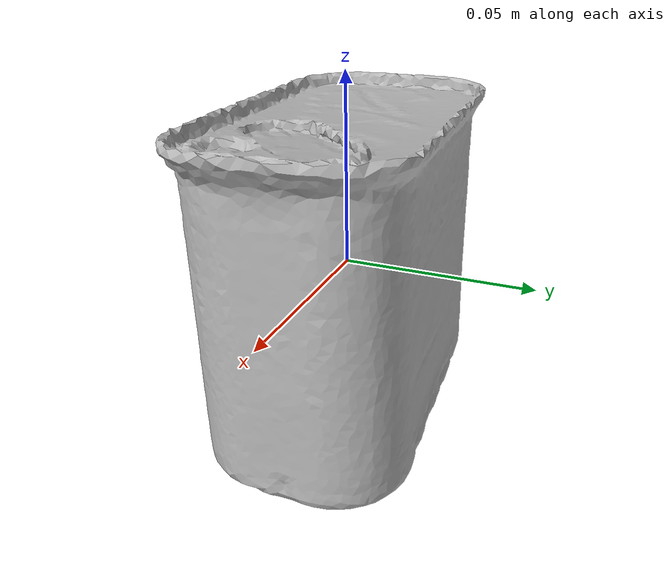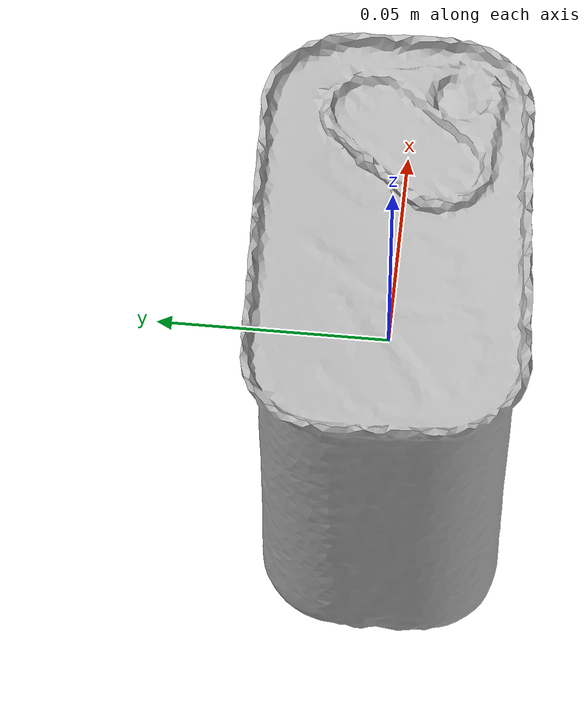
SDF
<?xml version="1.0" ?>
<sdf version="1.7">
<!--
This SDF file was automatically generated using a template modified
and authored by Jinjian Li. The moment of interia is not supposed to be changed.
-->
    <model name="obj_000009">
      <pose>0.0 0.0 0.0 0.0 0.0 0.0</pose>
      <link name="link">
        <inertial>
          <inertia>
           <ixx>0.0003740084013842457</ixx>
           <ixy>-1.4761288388865358e-05</ixy>
           <ixz>-7.988664850733185e-07</ixz>
           <iyy>0.0006412934093166652</iyy>
           <iyz>1.6618466988493059e-06</iyz>
           <izz>0.000483569442545376</izz>
          </inertia>
          <mass>0.530829788116033</mass>
        </inertial>
        <collision name="collision">
          <geometry>
            <mesh>
             <uri>obj_000009.obj</uri>
             <scale>1 1 1</scale>
            </mesh>
          </geometry>
        </collision>

        <visual name="visual">
          <geometry>
            <mesh>
             <uri>obj_000009.obj</uri>
             <scale>1 1 1</scale>
            </mesh>
          </geometry>
        </visual>
      </link>
    </model>
</sdf>
